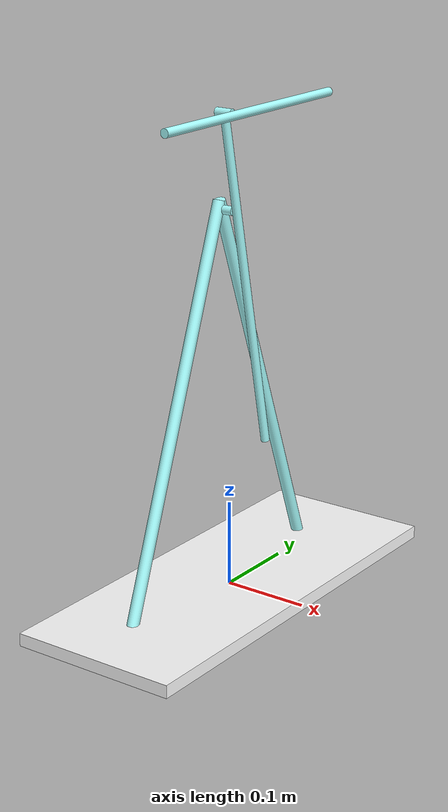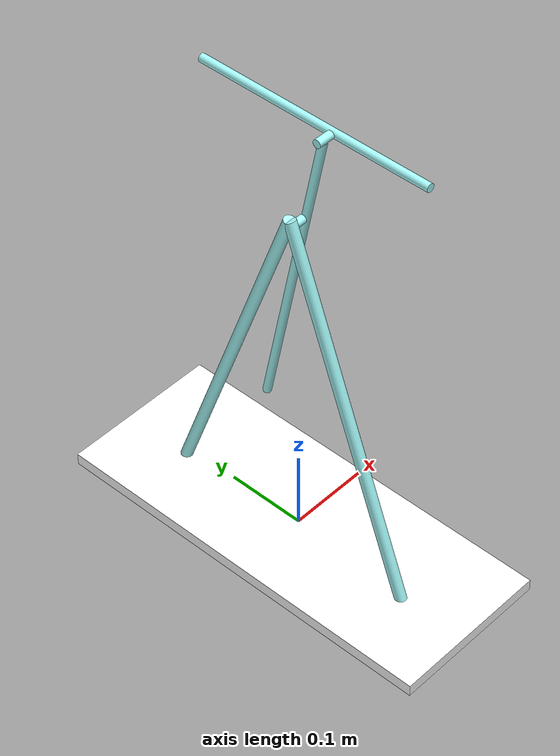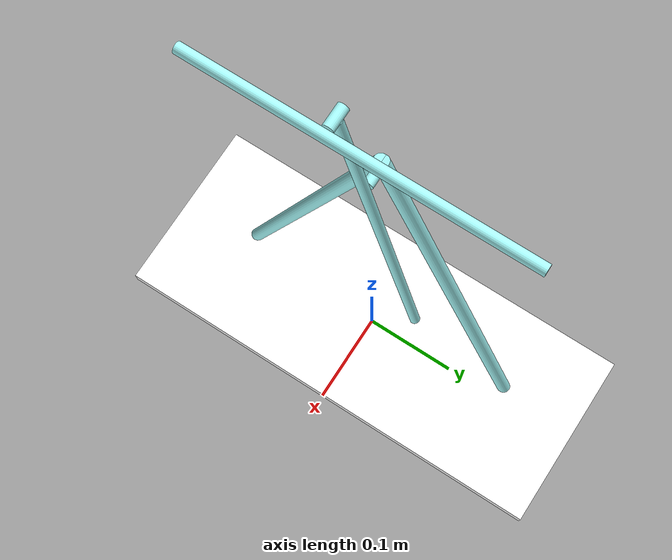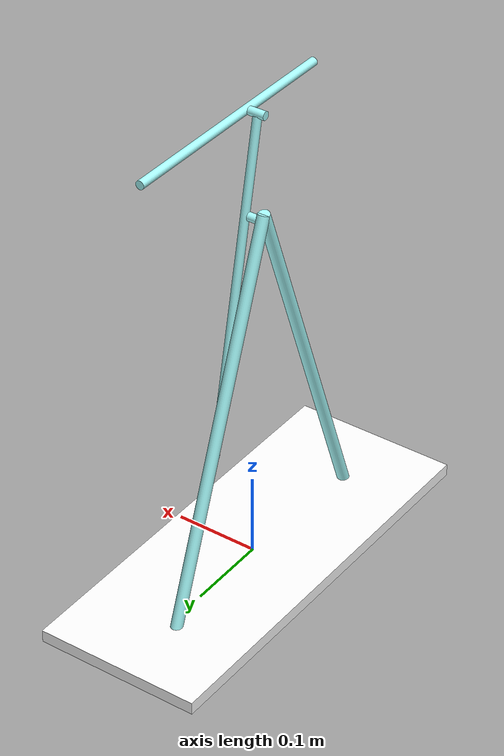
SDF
<?xml version="1.0" ?>
<sdf version="1.11">
  <model name="pendulum">
    <link name="base">
      <inertial auto="true" />
      <visual name="vis_plate_on_ground">
        <pose>-0.0 0.001 0.0005 0 0 0</pose>
        <geometry>
          <box>
            <size>0.2 0.5 0.015</size>
            <scale>7 7 7</scale>
          </box>
        </geometry>
        <material>
          <ambient>1 1 1 1</ambient>
          <diffuse>1 1 1 1</diffuse>
          <specular>1 1 1 1</specular>
          <pbr>
            <metal>
              <albedo_map>materials/Wood/Wood_COLOR.jpg</albedo_map>
              <normal_map>materials/Wood/Wood_NORM.jpg</normal_map>
              <roughness_map>materials/Wood/Wood_ROUGH.jpg</roughness_map>
            </metal>
          </pbr>
        </material>
      </visual>
      <visual name="vis_pole">
        <pose>-0.01375 0.0819 0.225 0.349 0 0</pose>
        <geometry>
          <cylinder>
            <length>0.4788</length>
            <radius>0.007</radius>
            <scale>7 7 7</scale>
          </cylinder>
        </geometry>
        <material>
          <ambient>0.66 1 1 1</ambient>
          <diffuse>0.66 1 1 1</diffuse>
          <specular>0.66 1 1 1</specular>
          <pbr>
            <metal>
              <metalness>0.9</metalness>
            </metal>
          </pbr>
        </material>
      </visual>
      <visual name="vis_pole2">
        <pose>-0.01375 -0.0819 0.225 -0.349 0 0</pose>
        <geometry>
          <cylinder>
            <length>0.4788</length>
            <radius>0.007</radius>
            <scale>7 7 7</scale>
          </cylinder>
        </geometry>
        <material>
          <ambient>0.66 1 1 1</ambient>
          <diffuse>0.66 1 1 1</diffuse>
          <specular>0.66 1 1 1</specular>
          <pbr>
            <metal>
              <metalness>0.9</metalness>
            </metal>
          </pbr>
        </material>
      </visual>
      <collision name="col_plate_on_ground">
        <density>2710.0</density>
        <pose>-0.0 0.001 0.0005 0 0 0</pose>
        <geometry>
          <box>
            <size>0.2 0.5 0.015</size>
            <scale>7 7 7</scale>
          </box>
        </geometry>
      </collision>
      <collision name="col_pole">
        <density>2710</density>
        <pose>-0.01375 0.0819 0.225 0.349 0 0</pose>
        <geometry>
          <cylinder>
            <length>0.4788</length>
            <radius>0.007</radius>
            <scale>7 7 7</scale>
          </cylinder>
        </geometry>
      </collision>
      <collision name="col_pole2">
        <density>2710</density>
        <pose>-0.01375 -0.0819 0.225 -0.349 0 0</pose>
        <geometry>
          <cylinder>
            <length>0.4788</length>
            <radius>0.007</radius>
            <scale>7 7 7</scale>
          </cylinder>
        </geometry>
      </collision>
    </link>

    <!-- upper link, length 1, IC -90 degrees -->
    <link name="upper_link">
      <pose>0 0.017 0.355 0.2 0 0</pose>
      <self_collide>0</self_collide>
      <inertial auto="true" />
      <visual name="vis_upper_joint">
        <pose>-0.0025 0 0.0875 0 1.5708 0</pose>
        <geometry>
          <cylinder>
            <radius>0.005</radius>
            <length>0.015</length>
            <scale>7 7 7</scale>
          </cylinder>
        </geometry>
        <material>
          <ambient>0.66 1 1 1</ambient>
          <diffuse>0.66 1 1 1</diffuse>
          <specular>0.66 1 1 1</specular>
          <pbr>
            <metal>
              <metalness>0.9</metalness>
            </metal>
          </pbr>
        </material>
      </visual>
      <visual name="vis_bob2">
        <pose>0.010 0 0.20 0 1.5708 0</pose>
        <geometry>
          <cylinder>
            <radius>0.005</radius>
            <length>0.02</length>
            <scale>7 7 7</scale>
          </cylinder>
        </geometry>
        <material>
          <ambient>0.66 1 1 1</ambient>
          <diffuse>0.66 1 1 1</diffuse>
          <specular>0.66 1 1 1</specular>
          <pbr>
            <metal>
              <metalness>0.9</metalness>
            </metal>
          </pbr>
        </material>
      </visual>
      <visual name="vis_cylinder">
        <pose>0.01 0 0 0 0 0</pose>
        <geometry>
          <cylinder>
            <radius>0.005</radius>
            <length>0.395</length>
            <scale>7 7 7</scale>
          </cylinder>
        </geometry>
        <material>
          <ambient>0.66 1 1 1</ambient>
          <diffuse>0.66 1 1 1</diffuse>
          <specular>0.66 1 1 1</specular>
          <pbr>
            <metal>
              <metalness>0.9</metalness>
            </metal>
          </pbr>
        </material>
      </visual>
      <collision name="col_upper_joint">
        <density>2710</density>
        <pose>-0.0025 0 0.0875 0 1.5708 0</pose>
        <geometry>
          <cylinder>
            <radius>0.01</radius>
            <length>0.015</length>
            <scale>7 7 7</scale>
          </cylinder>
        </geometry>
      </collision>
      <collision name="col_bob2">
        <density>2710</density>
        <pose>0.010 0 0.207 0 1.5708 0</pose>
        <geometry>
          <cylinder>
            <radius>0.01</radius>
            <length>0.02</length>
            <scale>7 7 7</scale>
          </cylinder>
        </geometry>
      </collision>
      <collision name="col_cylinder">
        <density>2710</density>
        <pose>0.01 0 0 0 0 0</pose>
        <geometry>
          <cylinder>
            <radius>0.005</radius>
            <length>0.395</length>
            <scale>7 7 7</scale>
          </cylinder>
        </geometry>
      </collision>
    </link>

    <!-- lower link, length 1, IC ~-120 degrees more -->
    <link name="lower_link">
      <pose>0.025 -0.02 0.55 -1.57 0 0</pose>
      <self_collide>0</self_collide>
      <inertial auto="true" />
      <visual name="vis_cylinder">
        <pose>0 0 0.025 0 0 0</pose>
        <geometry>
          <cylinder>
            <radius>0.005</radius>
            <length>0.30</length>
            <scale>7 7 7</scale>
          </cylinder>
        </geometry>
        <material>
          <ambient>0.66 1 1 1</ambient>
          <diffuse>0.66 1 1 1</diffuse>
          <specular>0.66 1 1 1</specular>
          <pbr>
            <metal>
              <metalness>0.9</metalness>
            </metal>
          </pbr>
        </material>
      </visual>
      <collision name="col_cylinder">
        <density>2710</density>
        <pose>0 0 0.025 0 0 0</pose>
        <geometry>
          <cylinder>
            <radius>0.005</radius>
            <length>0.30</length>
            <scale>7 7 7</scale>
          </cylinder>
        </geometry>
      </collision>
    </link>

    <!-- pin joint for upper link, at origin of upper link -->
    <joint name="upper_joint" type="revolute">
      <pose>-0.0025 0 0.0875 0 0 0</pose>
      <parent>base</parent>
      <child>upper_link</child>
      <axis>
        <xyz>1.0 0 0</xyz>
      </axis>
    </joint>

    <!-- pin joint for lower link, at origin of child link -->
    <joint name="lower_joint" type="revolute">
      <pose relative_to="upper_link">0.010 0 0.20 0 0 0</pose>
      <parent>upper_link</parent>
      <child>lower_link</child>
      <axis>
        <xyz>1.0 0 0</xyz>
      </axis>
    </joint>
  </model>
</sdf>
